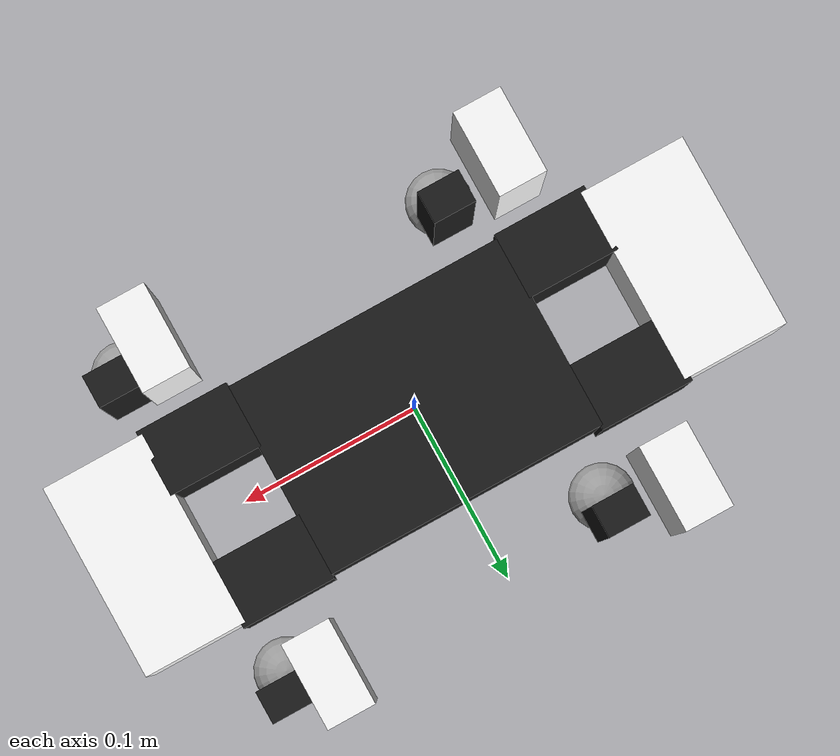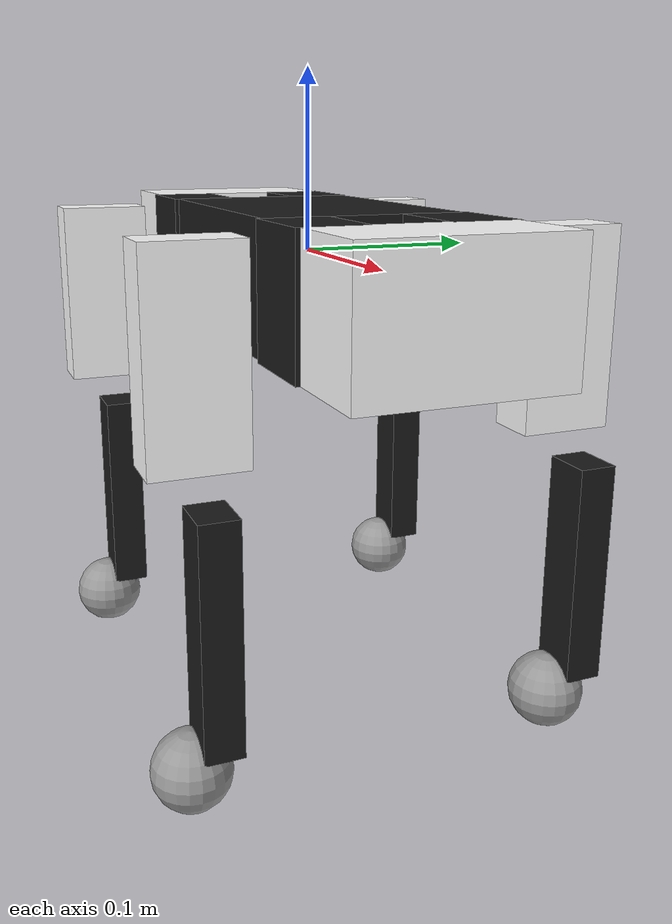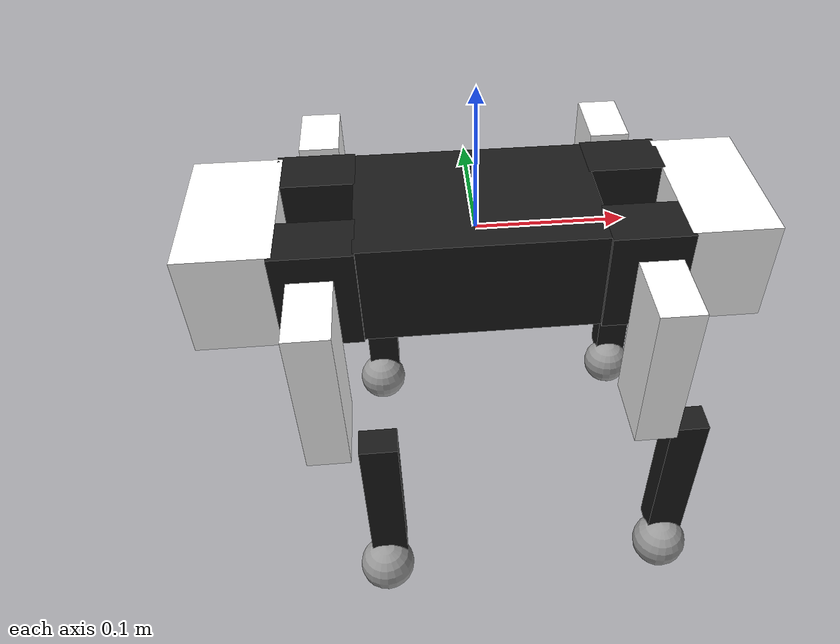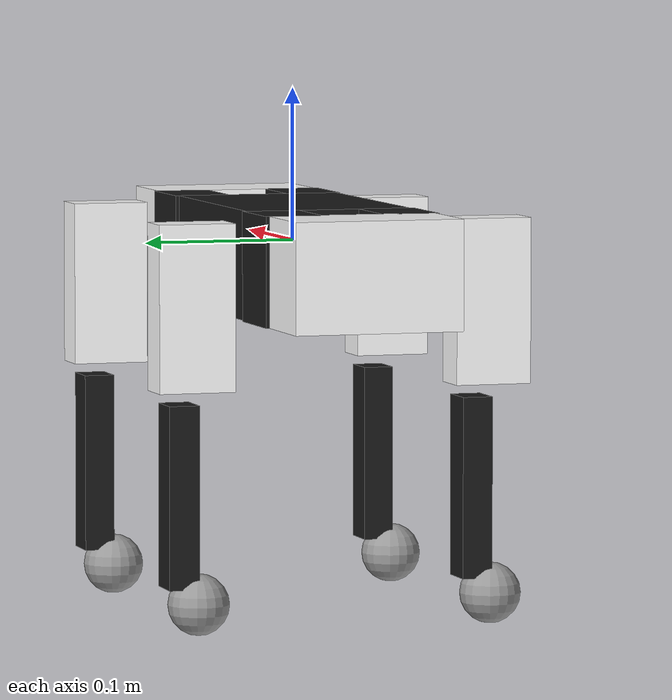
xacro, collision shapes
<?xml version="1.0" encoding="UTF-8"?>
<robot xmlns:xacro="http://www.ros.org/wiki/xacro" name="SpotMicroAI">
   <material name="white">
      <color rgba="1.0 1.0 1.0 1"/>
   </material>
   <material name="black">
      <color rgba="0.1 0.1 0.1 1" />
   </material>
   <material name="grey">
      <color rgba="0.6 0.6 0.6 1" />
   </material>
   <!-- Params -->
   <xacro:property name="body_length" value="0.160" />
   <xacro:property name="body_width" value="0.110" />
   <xacro:property name="body_height" value="0.07071" />
   <xacro:property name="lidar_length" value="0.0985" />
   <xacro:property name="lidar_width" value="0.0577" />
   <xacro:property name="lidar_height" value="0.070" />
   <xacro:property name="front_length" value="0.058" />
   <xacro:property name="rear_length" value="0.060" />
   <xacro:property name="shoulder_length" value="0.05275" />
   <xacro:property name="shoulder_width" value="0.0374" />
   <xacro:property name="leg_length" value="0.107" />
   <xacro:property name="foot_length" value="0.1185" />
   <xacro:property name="toe_radius" value="0.020" />
   <xacro:property name="toe_width" value="0.020" />
   <xacro:property name="shift" value="0.060" /> <!-- upper leg joint offset -->
   <xacro:property name="shiftx" value="0.105" />
   <xacro:property name="shifty" value="0.03875" />
   <!-- Macros -->
   <xacro:macro name="gen_shoulder" params="name left">
      <link name="${name}">
         <visual>
            <xacro:if value="${left}">
               <geometry>
                  <mesh filename="package://spotmicro_description/meshes/ceasar/lshoulder.stl" scale="0.001 0.001 0.001" />
               </geometry>
               <origin rpy="0 0 0" xyz="0 0 0" />
            </xacro:if>
            <xacro:unless value="${left}">
               <geometry>
                  <mesh filename="package://spotmicro_description/meshes/ceasar/rshoulder.stl" scale="0.001 0.001 0.001" />
               </geometry>
               <origin rpy="0 0 0" xyz="0 0 0" />
            </xacro:unless>
            <material name="black" />
         </visual>
         <collision>
            <geometry>
               <box size="${shoulder_length} ${shoulder_width} ${body_height}" />
            </geometry>
            <origin rpy="0 0 0" xyz="0 0 -0.01" />
         </collision>
         <inertial>
            <mass value="0.10" />
            <inertia ixx="100" ixy="0" ixz="0" iyy="100" iyz="0" izz="100" />
         </inertial>
      </link>
   </xacro:macro>
   <xacro:macro name="gen_shoulder_joint" params="pos shiftx shifty">
      <joint name="${pos}_shoulder" type="revolute">
         <parent link="base_link" />
         <child link="${pos}_shoulder_link" />
         <axis xyz="1 0 0" />
         <origin rpy="0 0 0" xyz="${shiftx} ${shifty} 0" />
         <limit effort="1000.0" velocity="0.7" lower="-0.548" upper="0.548"/>
         <dynamics damping="0.0" friction="0.5" />
      </joint>
      <transmission name="${pos}_shoulder_trans">
         <type>transmission_interface/SimpleTransmission</type>
         <joint name="${pos}_shoulder">
               <hardwareInterface>hardware_interface/PositionJointInterface</hardwareInterface>
         </joint>
         <actuator name="${pos}_shoulder_actuator">
               <hardwareInterface>hardware_interface/PositionJointInterface</hardwareInterface>
               <mechanicalReduction>1</mechanicalReduction>
         </actuator>
      </transmission>
   </xacro:macro>
   <xacro:macro name="gen_leg" params="name left">
      <link name="${name}">
         <visual>
            <xacro:if value="${left}">
               <geometry>
                  <mesh filename="package://spotmicro_description/meshes/ceasar/larm.stl" scale="0.001 0.001 0.001" />
               </geometry>
               <origin rpy="0 0 0" xyz="0 0 0" />
            </xacro:if>
            <xacro:unless value="${left}">
               <geometry>
                  <mesh filename="package://spotmicro_description/meshes/ceasar/rarm.stl" scale="0.001 0.001 0.001" />
               </geometry>
               <origin rpy="0 0 0" xyz="0 0 0" />
            </xacro:unless>
            <material name="white" />
         </visual>
         <collision>
            <origin rpy="0.0 0.0 0.0" xyz="0 0 -0.033 " />
            <geometry>
               <box size="0.028 0.050 ${leg_length}" />
            </geometry>
         </collision>
         <inertial>
            <mass value="0.15" />
            <inertia ixx="1000" ixy="0" ixz="0" iyy="1000" iyz="0" izz="1000" />
         </inertial>
      </link>
   </xacro:macro>
   <xacro:macro name="gen_leg_joint" params="pos shift">
      <joint name="${pos}_leg" type="revolute">
         <parent link="${pos}_shoulder_link" />
         <child link="${pos}_leg_link" />
         <axis xyz="0 1 0" />
         <origin rpy="0 0 0" xyz="0 ${shift} 0" />
         <limit effort="1000.0" velocity="0.5" lower="-2.666" upper="1.548"/>
         <dynamics damping="0.0" friction="0.0" />
      </joint>
      <transmission name="${pos}_leg_trans">
         <type>transmission_interface/SimpleTransmission</type>
         <joint name="${pos}_leg">
               <hardwareInterface>hardware_interface/PositionJointInterface</hardwareInterface>
         </joint>
         <actuator name="${pos}_leg_actuator">
               <hardwareInterface>hardware_interface/PositionJointInterface</hardwareInterface>
               <mechanicalReduction>1</mechanicalReduction>
         </actuator>
      </transmission>
   </xacro:macro>
   <xacro:macro name="gen_foot" params="name left">
      <link name="${name}">
         <visual>
            <xacro:if value="${left}">
               <geometry>
                  <mesh filename="package://spotmicro_description/meshes/ceasar/lfoot.stl" scale="0.001 0.001 0.001" />
               </geometry>
               <origin rpy="0 0 0" xyz="0 0 0" />
            </xacro:if>
            <xacro:unless value="${left}">
               <geometry>
                  <mesh filename="package://spotmicro_description/meshes/ceasar/rfoot.stl" scale="0.001 0.001 0.001" />
               </geometry>
               <origin rpy="0 0 0" xyz="0 0 0" />
            </xacro:unless>
            <material name="black" />
         </visual>
         <collision>
            <geometry>
               <box size="0.026 0.020 ${foot_length}" />
            </geometry>
            <origin rpy="0.0 0.0 0.0" xyz="0.0 0.0 -0.050" />
         </collision>
         <inertial>
            <mass value="0.1" />
            <inertia ixx="1000" ixy="0" ixz="0" iyy="1000" iyz="0" izz="1000" />
         </inertial>
      </link>
   </xacro:macro>
   <xacro:macro name="gen_foot_joint" params="pos">
      <joint name="${pos}_foot" type="revolute">
         <parent link="${pos}_leg_link" />
         <child link="${pos}_foot_link" />
         <axis xyz="0 1 0" />
         <origin rpy="0 0 0" xyz="0.030 0 -${leg_length}" />
         <limit effort="1000.0" velocity="0.5" lower="-2.59" upper="0.1"/>
         <dynamics damping="0.0" friction="0.5" />
      </joint>
      <transmission name="${pos}_foot_trans">
         <type>transmission_interface/SimpleTransmission</type>
         <joint name="${pos}_foot">
               <hardwareInterface>hardware_interface/PositionJointInterface</hardwareInterface>
         </joint>
         <actuator name="${pos}_foot_actuator">
               <hardwareInterface>hardware_interface/PositionJointInterface</hardwareInterface>
               <mechanicalReduction>1</mechanicalReduction>
         </actuator>
      </transmission>
   </xacro:macro>
   <xacro:macro name="gen_toe" params="name">
      <link name="${name}">
         <visual>
            <geometry>
               <mesh filename="package://spotmicro_description/meshes/ceasar/toe.stl" scale="0.001 0.001 0.001" />
            </geometry>
            <origin rpy="0 0 0" xyz="0 0 0" />
            <material name="grey" />
         </visual>
         <collision>
            <geometry>
               <sphere radius="${toe_radius}" />
            </geometry>
            <origin rpy="0 0 0" xyz="0 0 0" />
            <contact_coefficients mu="1.1" />
         </collision>
         <inertial>
            <mass value="0.05" />
            <inertia ixx="1000" ixy="0" ixz="0" iyy="1000" iyz="0" izz="1000" />
         </inertial>
      </link>
   </xacro:macro>
   <xacro:macro name="gen_toe_joint" params="pos">
      <joint name="${pos}_toe" type="fixed">
         <parent link="${pos}_foot_link" />
         <child link="${pos}_toe_link" />
         <origin xyz="-0.003 -0.012 -0.120" />
      </joint>
   </xacro:macro>
   <xacro:macro name="gen_full_leg_joint" params="pos shiftx shifty shift left">
      <xacro:gen_shoulder name="${pos}_shoulder_link" left="${left}" />
      <xacro:gen_leg name="${pos}_leg_link" left="${left}" />
      <xacro:gen_foot name="${pos}_foot_link" left="${left}" />
      <xacro:gen_toe name="${pos}_toe_link" />
      <xacro:gen_shoulder_joint pos="${pos}" shiftx="${shiftx}" shifty="${shifty}" />
      <xacro:gen_leg_joint pos="${pos}" shift="${shift}" />
      <xacro:gen_foot_joint pos="${pos}" />
      <xacro:gen_toe_joint pos="${pos}" />
   </xacro:macro>
   <!-- Robot Body -->
   <link name="base_link"/>
   <link name="base_inertia">
      <visual>
         <geometry>
            <mesh filename="package://spotmicro_description/meshes/ceasar/mainbody.stl" scale="0.001 0.001 0.001" />
         </geometry>
         <material name="black" />
         <origin rpy="0 0 0" xyz="0 0 0" />
      </visual>
      <collision>
         <geometry>
            <box size="${body_length} ${body_width} ${body_height}" />
         </geometry>
         <origin rpy="0 0 0" xyz="0 0 -0.010" />
      </collision>
      <inertial>
         <mass value="2.80" />
         <inertia ixx="100" ixy="0" ixz="0" iyy="100" iyz="0" izz="100" />
      </inertial>
   </link>
   <joint name="base_inertia_joint" type="fixed">
      <parent link="base_link" />
      <child link="base_inertia" />
   </joint>
   <link name="rear_link">
      <visual>
         <geometry>
            <mesh filename="package://spotmicro_description/meshes/ceasar/backpart.stl" scale="0.001 0.001 0.001" />
         </geometry>
         <origin rpy="0 0 0" xyz="-0.033598 -0.054006 0.004128" />
         <material name="white" />
      </visual>
      <collision>
         <geometry>
            <box size="${rear_length} ${body_width} ${body_height}" />
         </geometry>
         <origin rpy="0 0 0" xyz="-0.158 0 -0.010" />
      </collision>
      <inertial>
         <mass value="0.20" />
         <inertia ixx="100" ixy="0" ixz="0" iyy="100" iyz="0" izz="100" />
      </inertial>
   </link>
   <joint name="base_rear" type="fixed">
      <parent link="base_link" />
      <child link="rear_link" />
   </joint>
   <gazebo reference="rear_link">
      <material>Gazebo/white</material>
   </gazebo>
   <link name="front_link">
      <visual>
         <geometry>
            <mesh filename="package://spotmicro_description/meshes/ceasar/frontpart.stl" scale="0.001 0.001 0.001" />
         </geometry>
         <origin rpy="0 0 0" xyz="0.185533 0.05675 -0.046798" />
         <material name="white" />
      </visual>
      <collision>
         <geometry>
            <box size="${front_length} ${body_width} ${body_height}" />
         </geometry>
         <origin rpy="0 0 0" xyz="0.158 0 -0.010" />
      </collision>
      <inertial>
         <mass value="0.20" />
         <inertia ixx="100" ixy="0" ixz="0" iyy="100" iyz="0" izz="100" />
      </inertial>
   </link>
   <gazebo reference="front_link">
      <material>Gazebo/white</material>
   </gazebo>
   <joint name="base_front" type="fixed">
      <parent link="base_link" />
      <child link="front_link" />
   </joint>
   <!-- create Legs -->
   <xacro:gen_full_leg_joint pos="front_left" shiftx="${shiftx}" shifty="${shifty}" shift="${shift}" left="true" />
   <xacro:gen_full_leg_joint pos="rear_left" shiftx="-${shiftx}" shifty="${shifty}" shift="${shift}" left="true" />
   <xacro:gen_full_leg_joint pos="front_right" shiftx="${shiftx}" shifty="-${shifty}" shift="-${shift}" left="false" />
   <xacro:gen_full_leg_joint pos="rear_right" shiftx="-${shiftx}" shifty="-${shifty}" shift="-${shift}" left="false" />
</robot>
